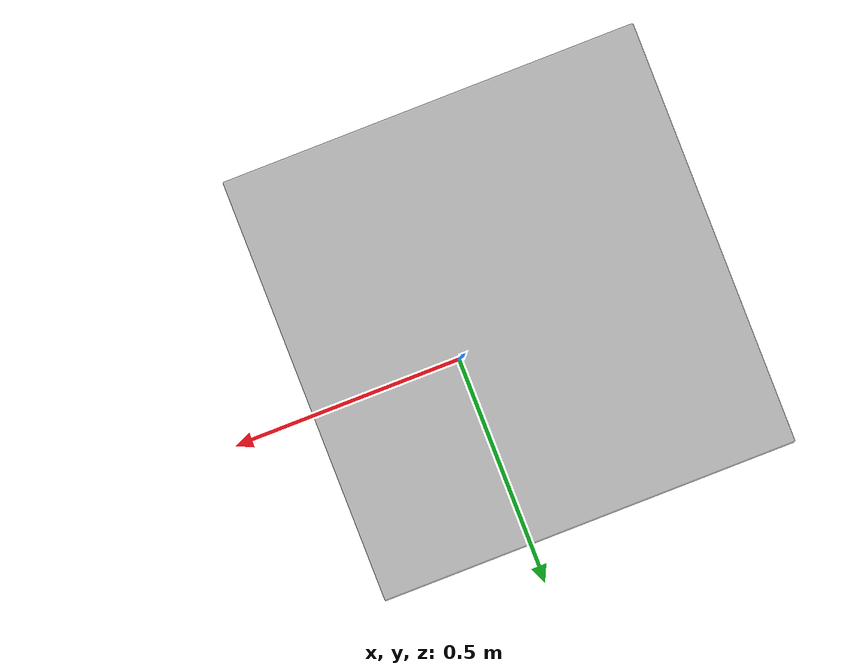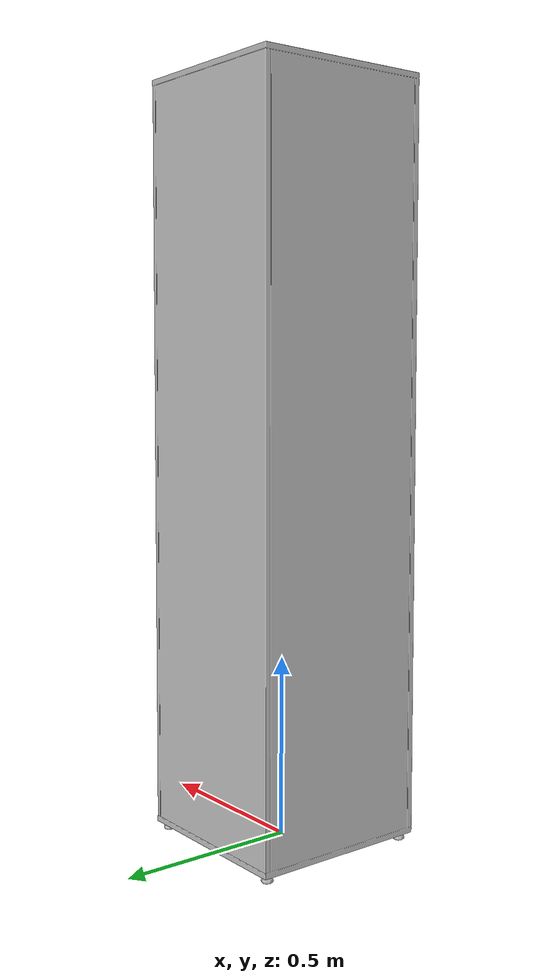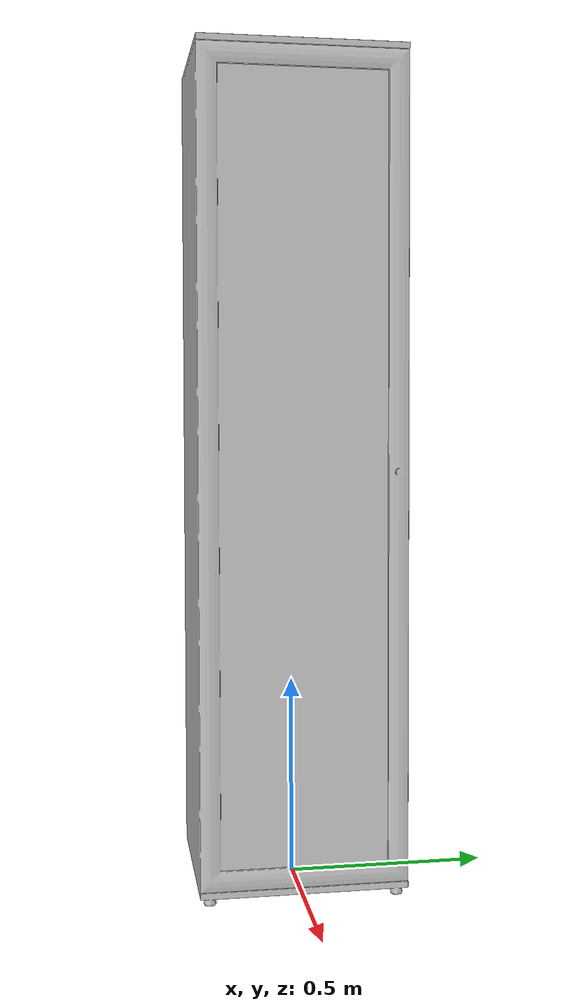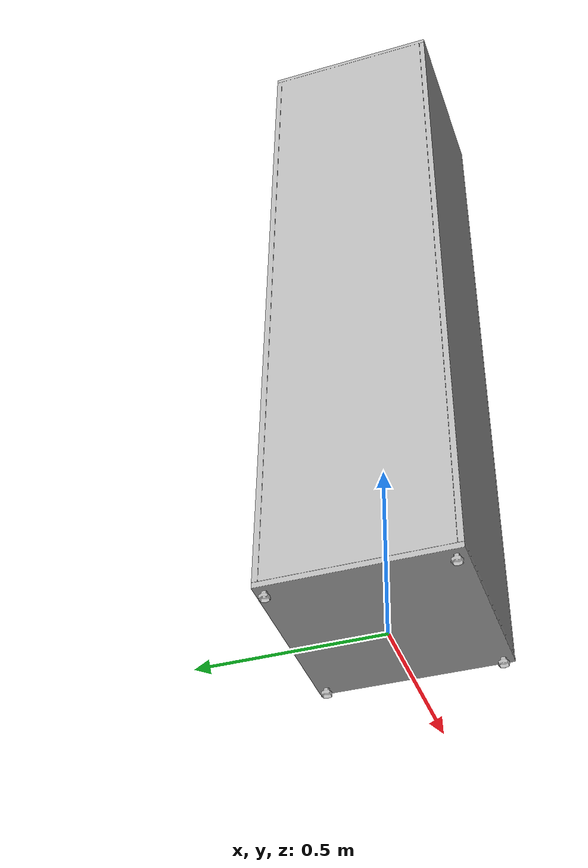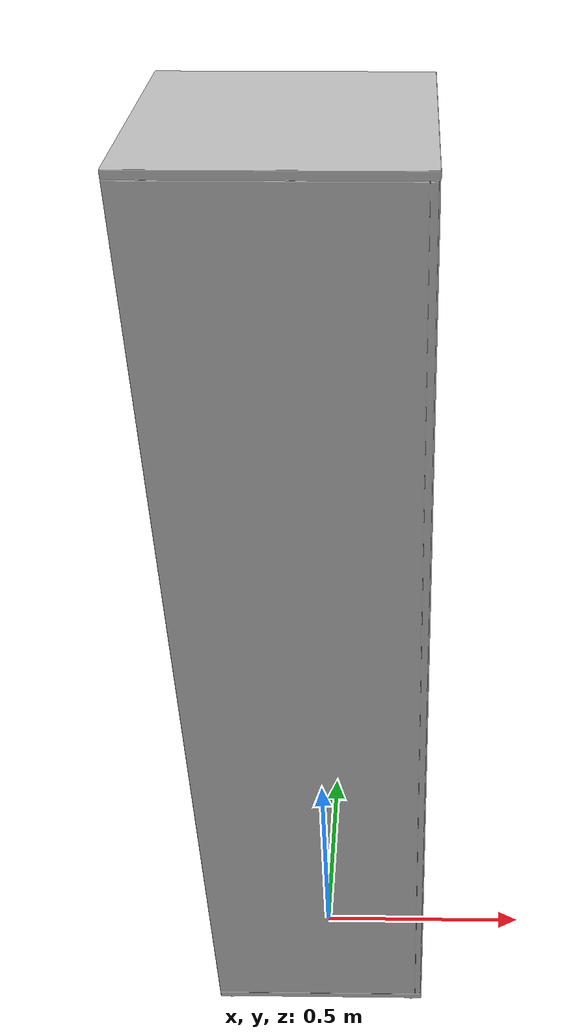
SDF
<?xml version='1.0'?>
<sdf version='1.4'>
  <model name='s__566'>
    <pose>0 0 0 0 0 0</pose>
    <static>true</static>
    <link name='link'>
      <collision name='collision'>
        <pose>0 0 0 0 0 0</pose>
        <geometry>
          <box>
            <size>0.51 0.51 2</size>
          </box>
        </geometry>
      </collision>
      <visual name='visual'>
        <pose>0 0 0 0 0 0</pose>
        <geometry>
          <mesh><uri>model://s__566/s__566.dae</uri></mesh>
        </geometry>
      </visual>
    </link>
  </model>
</sdf>
